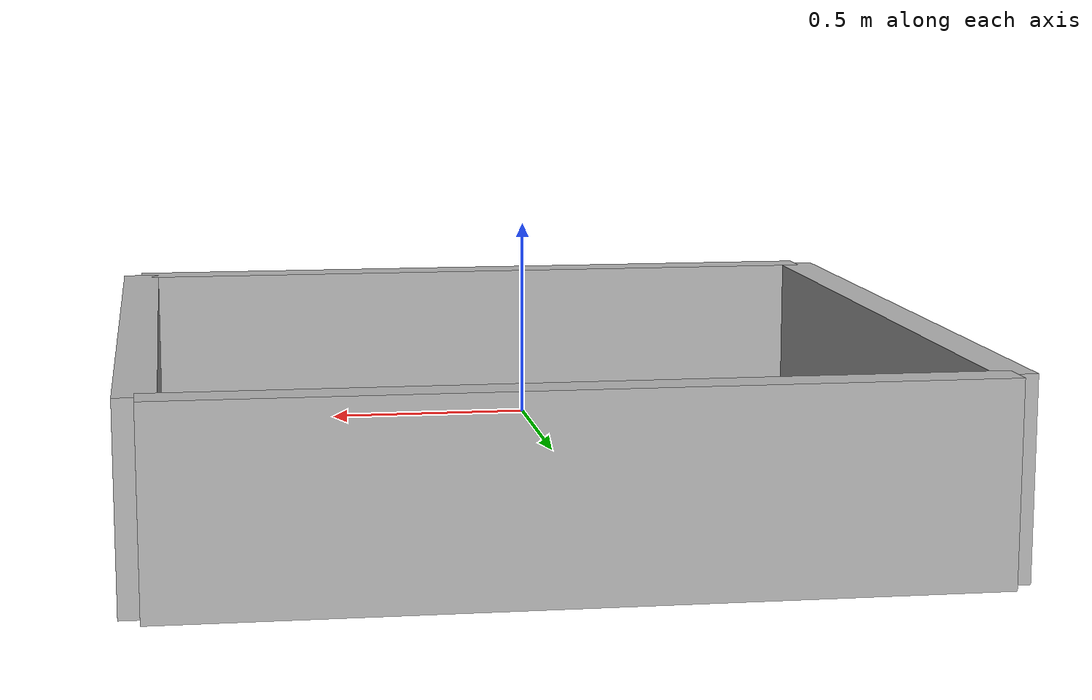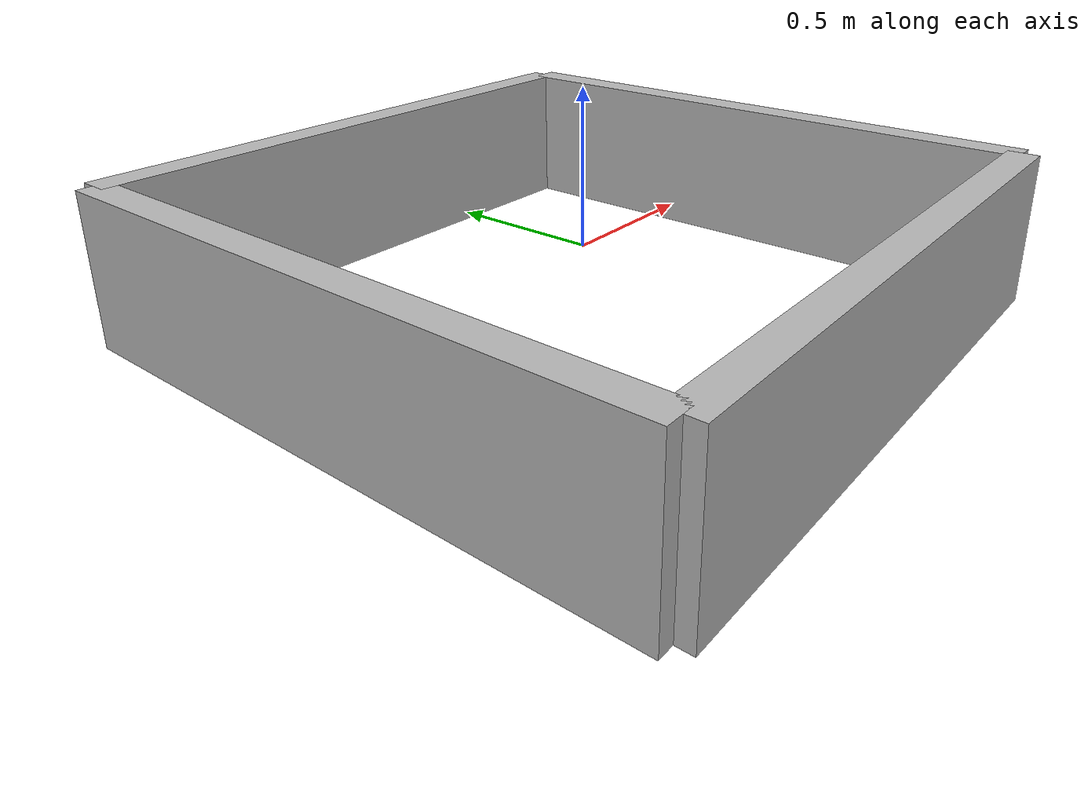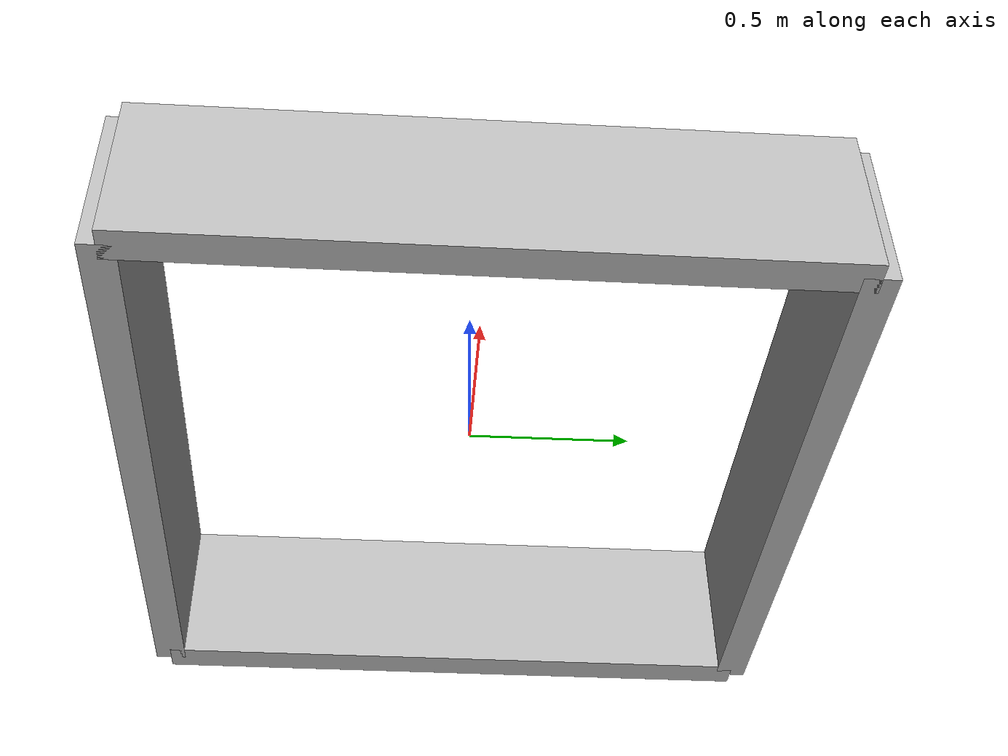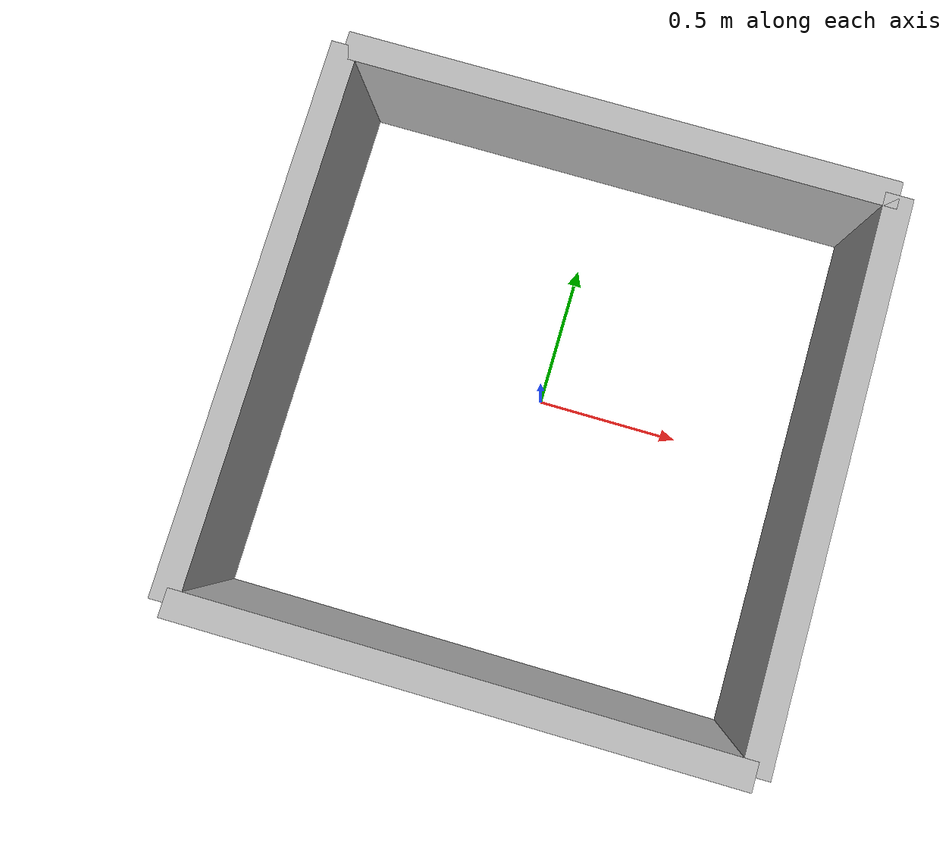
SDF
<?xml version='1.0'?>
<sdf version='1.4'>
<model name="walls">
    <static>1</static>
    <link name='wall1'>
        <pose>0 1 0 0 0 0</pose>
        <collision name='wall_body'>
            <geometry>
                <box>
                    <size>2.0 0.1 0.5</size>
                </box>
            </geometry>
        </collision>
        <visual name='wall_visual'>
            <geometry>
                <box>
                    <size>2.0 0.1 0.5</size>
                </box>
            </geometry>

        </visual>
    </link>
    <link name='wall2'>
        <pose>0 -1 0 0 0 0</pose>
        <collision name='wall_body'>
            <geometry>
                <box>
                    <size>2.0 0.1 0.5</size>
                </box>
            </geometry>
        </collision>
        <visual name='wall_visual'>
            <geometry>
                <box>
                    <size>2.0 0.1 0.5</size>
                </box>
            </geometry>

        </visual>
    </link>
    <link name='wall3'>
        <pose>1 0 0 0 0 1.57079632679</pose>
        <collision name='wall_body'>
            <geometry>
                <box>
                    <size>2.0 0.1 0.5</size>
                </box>
            </geometry>
        </collision>
        <visual name='wall_visual'>
            <geometry>
                <box>
                    <size>2.0 0.1 0.5</size>
                </box>
            </geometry>

        </visual>
    </link>
    <link name='wall4'>
        <pose>-1 0 0 0 0 1.57079632679</pose>
        <collision name='wall_body'>
            <geometry>
                <box>
                    <size>2.0 0.1 0.5</size>
                </box>
            </geometry>
        </collision>
        <visual name='wall_visual'>
            <geometry>
                <box>
                    <size>2.0 0.1 0.5</size>
                </box>
            </geometry>

        </visual>
    </link>

</model>
</sdf>
